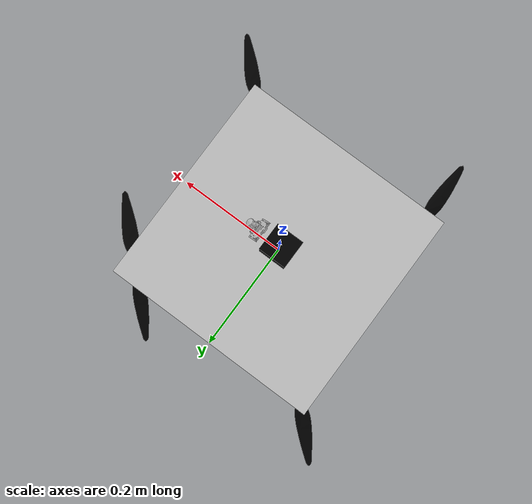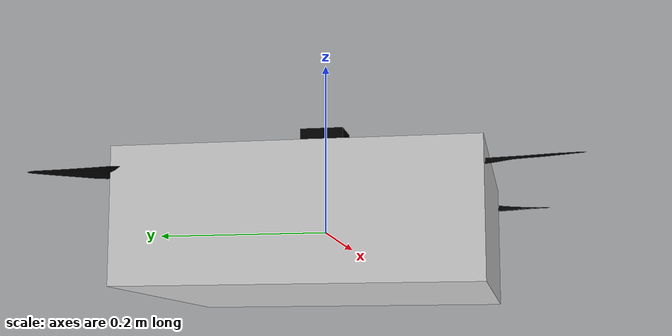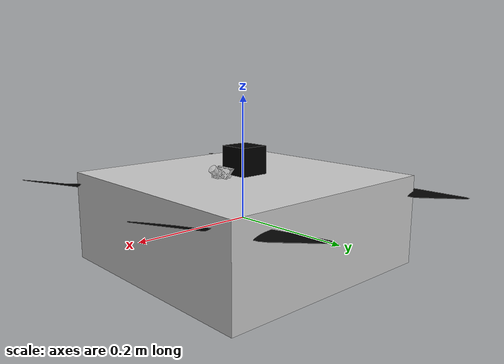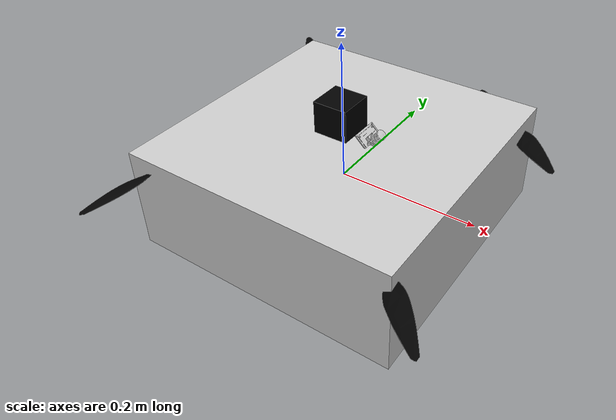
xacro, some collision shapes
<?xml version="1.0"?>
<robot xmlns:xacro="http://www.ros.org/wiki/xacro"  name="dogpa_vl">
  <xacro:property name="package_path" value="$(find uosm_robot_viewer)"/>

  <!--Joint-->
  <joint name="rotor_0" type="revolute">
    <limit lower="-3.14000" upper="3.14000" effort="0.00000" velocity="0.00000"/>
    <origin rpy="0.00000 0.00000 0.00000" xyz="0.17202 -0.17022 0.04861"/>
    <parent link="base_link"/>
    <child link="rotor_0_link"/>
    <axis xyz="0.00000 0.00000 1.00000"/>
  </joint>
  <joint name="rotor_1" type="revolute">
    <limit lower="-3.14000" upper="3.14000" effort="0.00000" velocity="0.00000"/>
    <origin rpy="0.00000 0.00000 0.00000" xyz="-0.16623 0.16971 0.04861"/>
    <parent link="base_link"/>
    <child link="rotor_1_link"/>
    <axis xyz="0.00000 0.00000 1.00000"/>
  </joint>
  <joint name="rotor_2" type="revolute">
    <limit lower="-3.14000" upper="3.14000" effort="0.00000" velocity="0.00000"/>
    <origin rpy="0.00000 0.00000 0.00000" xyz="0.17403 0.16804 0.04890"/>
    <parent link="base_link"/>
    <child link="rotor_2_link"/>
    <axis xyz="0.00000 0.00000 1.00000"/>
  </joint>
  <joint name="rotor_3" type="revolute">
    <limit lower="-3.14000" upper="3.14000" effort="0.00000" velocity="0.00000"/>
    <origin rpy="0.00000 0.00000 0.00000" xyz="-0.16679 -0.16870 0.04890"/>
    <parent link="base_link"/>
    <child link="rotor_3_link"/>
    <axis xyz="0.00000 0.00000 1.00000"/>
  </joint>
  <joint name="rplidar_joint" type="fixed">
    <origin rpy="0.00000 0.00000 -1.57054" xyz="-0.00300 0.00000 0.07000"/>
    <parent link="base_link"/>
    <child link="rplidar_s1_link"/>
  </joint>
  <joint name="usbcam_joint" type="fixed">
    <origin rpy="0.00000 0.00000 0.00000" xyz="0.05137 -0.00232 0.07916"/>
    <parent link="base_link"/>
    <child link="usbcam_link"/>
  </joint>
  <joint name="zedm_joint" type="fixed">
    <origin rpy="0.00000 0.00000 0.00000" xyz="0.08650 0.00721 -0.03226"/>
    <parent link="base_link"/>
    <child link="zedm_link"/>
  </joint>
  <joint name="zedm_left_joint" type="fixed">
    <origin rpy="0.00000 0.00000 0.00000" xyz="0.02062 0.02432 0.00028"/>
    <parent link="zedm_link"/>
    <child link="zedm_left_link"/>
  </joint>
  <joint name="zedm_right_joint" type="fixed">
    <origin rpy="0.00000 0.00000 0.00000" xyz="0.02062 -0.03861 0.00027"/>
    <parent link="zedm_link"/>
    <child link="zedm_right_link"/>
  </joint>
  <link name="base_link">
    <collision name="body_collision">
      <origin rpy="0.00000 0.00000 0.00000" xyz="0.00001 -0.00000 -0.00001"/>
      <geometry>
        <box size="0.38959 0.38884 0.14766"/>
      </geometry>
    </collision>
    <inertial>
      <inertia ixx="0.01116" ixy="0.00001" ixz="-0.00018" iyy="0.01118" iyz="-0.00004" izz="0.01942"/>
      <origin rpy="0.00000 0.00000 0.00000" xyz="0.00516 0.00041 0.01135"/>
      <mass value="1.68200"/>
    </inertial>
    <visual name="body">
      <origin rpy="0.00000 0.00000 0.00000" xyz="0.00009 0.00035 0.00884"/>
      <material name="s500"/>
      <geometry>
        <mesh filename="file://${package_path}/urdf/dogpa_vl_meshes/dae/body.dae" scale="1.00000 1.00000 1.00000"/>
      </geometry>
    </visual>
  </link>
  <link name="rotor_0_link">
    <collision name="rotor_0_collision">
      <origin rpy="0.00000 0.00000 0.00000" xyz="0.00000 0.00000 0.00000"/>
      <geometry>
        <cylinder length="0.006" radius="0.127"/>
      </geometry>
    </collision>
    <inertial>
      <inertia ixx="0.00009" ixy="0.00000" ixz="0.00000" iyy="0.00009" iyz="0.00000" izz="0.00018"/>
      <origin rpy="0.00000 0.00000 0.00000" xyz="-0.00001 -0.00006 -0.00033"/>
      <mass value="0.01100"/>
    </inertial>
    <visual name="rotor_0">
      <origin rpy="0.00000 0.00000 0.00000" xyz="0.00000 -0.00000 0.00000"/>
      <material name="prop"/>
      <geometry>
        <mesh filename="file://${package_path}/urdf/dogpa_vl_meshes/dae/prop1.dae" scale="1.00000 1.00000 1.00000"/>
      </geometry>
    </visual>
  </link>
  <link name="rotor_1_link">
    <collision name="rotor_1_collision">
      <origin rpy="0.00000 0.00000 0.00000" xyz="0.00000 0.00000 0.00000"/>
      <geometry>
        <cylinder length="0.006" radius="0.127"/>
      </geometry>
    </collision>
    <inertial>
      <inertia ixx="0.00009" ixy="0.00000" ixz="0.00000" iyy="0.00009" iyz="0.00000" izz="0.00018"/>
      <origin rpy="0.00000 0.00000 0.00000" xyz="-0.00003 -0.00005 -0.00035"/>
      <mass value="0.01100"/>
    </inertial>
    <visual name="rotor_1">
      <origin rpy="0.00000 0.00000 0.00000" xyz="0.00000 -0.00000 0.00000"/>
      <material name="prop"/>
      <geometry>
        <mesh filename="file://${package_path}/urdf/dogpa_vl_meshes/dae/prop2.dae" scale="1.00000 1.00000 1.00000"/>
      </geometry>
    </visual>
  </link>
  <link name="rotor_2_link">
    <collision name="rotor_2_collision">
      <origin rpy="0.00000 0.00000 0.00000" xyz="0.00000 0.00000 0.00000"/>
      <geometry>
        <cylinder length="0.006" radius="0.127"/>
      </geometry>
    </collision>
    <inertial>
      <inertia ixx="0.00009" ixy="0.00000" ixz="0.00000" iyy="0.00009" iyz="0.00000" izz="0.00018"/>
      <origin rpy="0.00000 0.00000 0.00000" xyz="0.00014 0.00013 0.00035"/>
      <mass value="0.01100"/>
    </inertial>
    <visual name="rotor_2">
      <origin rpy="0.00000 0.00000 0.00000" xyz="-0.00000 -0.00000 -0.00000"/>
      <material name="prop"/>
      <geometry>
        <mesh filename="file://${package_path}/urdf/dogpa_vl_meshes/dae/prop3.dae" scale="1.00000 1.00000 1.00000"/>
      </geometry>
    </visual>
  </link>
  <link name="rotor_3_link">
    <collision name="rotor_3_collision">
      <origin rpy="0.00000 0.00000 -0.00000" xyz="-0.00000 -0.00000 -0.00000"/>
      <geometry>
        <cylinder length="0.006" radius="0.127"/>
      </geometry>
    </collision>
    <inertial>
      <inertia ixx="0.00009" ixy="0.00000" ixz="0.00000" iyy="0.00009" iyz="0.00000" izz="0.00018"/>
      <origin rpy="0.00000 0.00000 0.00000" xyz="0.00004 -0.00061 0.00036"/>
      <mass value="0.01100"/>
    </inertial>
    <visual name="rotor_3">
      <origin rpy="0.00000 0.00000 0.00000" xyz="0.00000 0.00000 0.00000"/>
      <material name="prop"/>
      <geometry>
        <mesh filename="file://${package_path}/urdf/dogpa_vl_meshes/dae/prop4.dae" scale="1.00000 1.00000 1.00000"/>
      </geometry>
    </visual>
  </link>
  <link name="rplidar_s1_link">
    <inertial>
      <inertia ixx="0.00001" ixy="0.00000" ixz="0.00000" iyy="0.00001" iyz="0.00000" izz="0.00001"/>
      <origin rpy="0.00000 0.00000 0.00000" xyz="0.00000 0.00000 0.00000"/>
      <mass value="0.00001"/>
    </inertial>
    <collision name="lidar_collision">
      <origin rpy="0.00000 0.00000 0.00000" xyz="0.00001 -0.00000 0.025"/>
      <geometry>
        <box size="0.05 0.05 0.05"/>
      </geometry>
    </collision>
    <sensor name="plannar_lidar" type="lidar">
      <parent link="rplidar_s1_link"/>
      <ray>
        <scan>
          <horizontal>
            <min_angle>0</min_angle>
            <max_angle>360</max_angle>
          </horizontal>
          <vertical>
            <samples>1000</samples>
            <min_angle>1</min_angle>
            <max_angle>1</max_angle>
            <resolution>0.0068242374</resolution>
          </vertical>
        </scan>
        <range>
          <max>40.00000</max>
        </range>
      </ray>
    </sensor>
    <visual name="rplidar_s1">
      <origin rpy="0.00000 0.00000 1.57054" xyz="0.00015 -0.00015 0.01836"/>
      <material name="rplidar"/>
      <geometry>
        <mesh filename="file://${package_path}/urdf/dogpa_vl_meshes/dae/rplidar_s1m1_r1.dae" scale="1.00000 1.00000 1.00000"/>
      </geometry>
    </visual>
  </link>
  <link name="usbcam_link">
    <sensor name="usb_mono_cam" type="camera">
      <origin rpy="0.00000 0.78540 0.00000" xyz="0.01182 0.00000 0.01114"/>
      <parent link="usbcam_link"/>
      <camera>
        <image>
          <width>1920</width>
          <height>1080</height>
          <hfov>1.57080</hfov>
        </image>
      </camera>
    </sensor>
    <inertial>
      <inertia ixx="0.00001" ixy="0.00000" ixz="0.00000" iyy="0.00001" iyz="0.00000" izz="0.00001"/>
      <origin rpy="0.00000 0.00000 0.00000" xyz="0.00000 0.00000 0.00000"/>
      <mass value="0.00001"/>
    </inertial>
    <visual name="usbcam">
      <origin rpy="0.00000 0.00000 0.00000" xyz="0.00000 -0.00000 0.00000"/>
      <material name="usbcam"/>
      <geometry>
        <mesh filename="file://${package_path}/urdf/dogpa_vl_meshes/dae/usbcam.dae" scale="1.00000 1.00000 1.00000"/>
      </geometry>
    </visual>
  </link>
  <link name="zedm_left_link">
    <sensor name="zedm_left_cam" type="camera">
      <origin rpy="3.14159 -1.57080 -0.00000" xyz="0.00000 0.00000 0.00000"/>
      <parent link="zedm_left_link"/>
      <camera>
        <image>
          <width>1080</width>
          <height>720</height>
          <hfov>1.57080</hfov>
        </image>
      </camera>
    </sensor>
    <inertial>
      <inertia ixx="0.00001" ixy="0.00000" ixz="0.00000" iyy="0.00001" iyz="0.00000" izz="0.00001"/>
      <origin rpy="0.00000 0.00000 0.00000" xyz="0.00000 0.00000 0.00000"/>
      <mass value="0.00001"/>
    </inertial>
  </link>
  <link name="zedm_link">
    <inertial>
      <inertia ixx="0.00001" ixy="0.00000" ixz="0.00000" iyy="0.00001" iyz="0.00000" izz="0.00001"/>
      <origin rpy="0.00000 0.00000 0.00000" xyz="0.00000 0.00000 0.00000"/>
      <mass value="0.00001"/>
    </inertial>
    <visual name="zedm">
      <origin rpy="0.00000 0.00000 0.00000" xyz="0.00000 0.00000 0.00000"/>
      <material name="zedm"/>
      <geometry>
        <mesh filename="file://${package_path}/urdf/dogpa_vl_meshes/dae/zedm.dae" scale="1.00000 1.00000 1.00000"/>
      </geometry>
    </visual>
  </link>
  <link name="zedm_right_link">
    <sensor name="zedm_right_cam" type="camera">
      <origin rpy="3.14159 -1.57080 -0.00000" xyz="0.00000 0.00000 0.00000"/>
      <parent link="zedm_right_link"/>
      <camera>
        <image>
          <width>1080</width>
          <height>720</height>
          <hfov>1.57080</hfov>
        </image>
      </camera>
    </sensor>
    <inertial>
      <inertia ixx="0.00001" ixy="0.00000" ixz="0.00000" iyy="0.00001" iyz="0.00000" izz="0.00001"/>
      <origin rpy="0.00000 0.00000 0.00000" xyz="0.00000 0.00000 0.00000"/>
      <mass value="0.00001"/>
    </inertial>
  </link>
  <material name="prop">
    <color rgba="0.00000 0.00000 0.00000 1.00000"/>
  </material>
  <material name="rplidar">
    <color rgba="0.00000 0.00000 0.00000 1.00000"/>
  </material>
  <material name="s500">
    <texture filename="file://${package_path}/urdf/dogpa_vl_meshes/dae/dogpa_albedo.png"/>
    <color rgba="0.80000 0.80000 0.80000 1.00000"/>
  </material>
  <material name="usbcam">
    <texture filename="file://${package_path}/urdf/dogpa_vl_meshes/dae/usbcam.png"/>
    <color rgba="0.80000 0.80000 0.80000 1.00000"/>
  </material>
  <material name="zedm">
    <color rgba="0.00000 0.00000 0.00000 1.00000"/>
  </material>
</robot>
